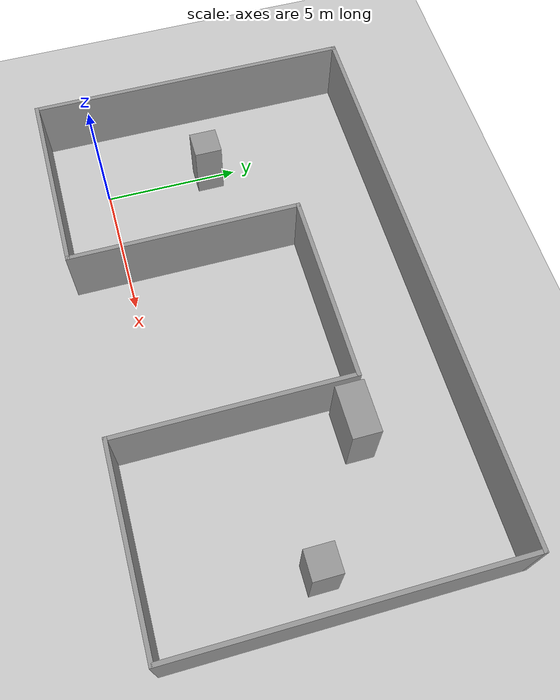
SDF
<sdf version="1.7">
 <world name="default">
  <light name="sun" type="directional">
   <pose>0 0 10 0 -0 0</pose>
   <diffuse>0.8 0.8 0.8 1</diffuse>
   <specular>0.2 0.2 0.2 1</specular>
   <attenuation>
    <range>1000</range>
    <constant>0.9</constant>
    <linear>0.01</linear>
    <quadratic>0.001</quadratic>
   </attenuation>
   <direction>-0.5 0.1 -0.9</direction>
   <spot><inner_angle>0</inner_angle><outer_angle>0</outer_angle><falloff>0</falloff></spot>
  </light>
  <model name="ground_plane">
   <static>1</static>
   <link name="link">
    <collision name="collision">
     <geometry><plane><normal>0 0 1</normal><size>100 100</size></plane></geometry>
     <surface>
      <contact><collide_bitmask>65535</collide_bitmask></contact>
      <friction><ode><mu>100</mu><mu2>50</mu2></ode></friction>
     </surface>
    </collision>
    <visual name="visual">
     <cast_shadows>0</cast_shadows>
     <geometry><plane><normal>0 0 1</normal><size>100 100</size></plane></geometry>
     <material>
      <script><uri>file://media/materials/scripts/gazebo.material</uri><name>Gazebo/Grey</name></script>
     </material>
    </visual>
   </link>
  </model>
  <gravity>0 0 -9.8</gravity>
  <magnetic_field>6e-06 2.3e-05 -4.2e-05</magnetic_field>
  <atmosphere type="adiabatic"/>
  <physics type="ode">
   <max_step_size>0.001</max_step_size>
   <real_time_factor>1</real_time_factor>
   <real_time_update_rate>1000</real_time_update_rate>
  </physics>
  <scene><ambient>0.4 0.4 0.4 1</ambient><background>0.7 0.7 0.7 1</background><shadows>1</shadows></scene>
  <audio><device>default</device></audio>
  <spherical_coordinates>
   <surface_model>EARTH_WGS84</surface_model>
   <latitude_deg>0</latitude_deg>
   <longitude_deg>0</longitude_deg>
   <elevation>0</elevation>
   <heading_deg>0</heading_deg>
  </spherical_coordinates>
  <model name="u_shape_test">
   <pose>7.27471 4.04698 0 0 -0 0</pose>
   <link name="Wall_12">
    <collision name="Wall_12_Collision">
     <geometry><box><size>8.5 0.15 2.5</size></box></geometry>
     <pose>0 0 1.25 0 -0 0</pose>
    </collision>
    <visual name="Wall_12_Visual">
     <pose>0 0 1.25 0 -0 0</pose>
     <geometry><box><size>8.5 0.15 2.5</size></box></geometry>
     <material>
      <script><uri>file://media/materials/scripts/gazebo.material</uri><name>Gazebo/Grey</name></script>
      <ambient>1 1 1 1</ambient>
     </material>
     <meta><layer>0</layer></meta>
    </visual>
    <pose>-3.425 -1.75 0 0 -0 1.5708</pose>
   </link>
   <link name="Wall_13">
    <collision name="Wall_13_Collision">
     <geometry><box><size>7 0.15 2.5</size></box></geometry>
     <pose>0 0 1.25 0 -0 0</pose>
    </collision>
    <visual name="Wall_13_Visual">
     <pose>0 0 1.25 0 -0 0</pose>
     <geometry><box><size>7 0.15 2.5</size></box></geometry>
     <material>
      <script><uri>file://media/materials/scripts/gazebo.material</uri><name>Gazebo/Grey</name></script>
      <ambient>1 1 1 1</ambient>
     </material>
     <meta><layer>0</layer></meta>
    </visual>
    <pose>0 2.425 0 0 -0 0</pose>
   </link>
   <link name="Wall_14">
    <collision name="Wall_14_Collision">
     <geometry><box><size>8.5 0.15 2.5</size></box></geometry>
     <pose>0 0 1.25 0 -0 0</pose>
    </collision>
    <visual name="Wall_14_Visual">
     <pose>0 0 1.25 0 -0 0</pose>
     <geometry><box><size>8.5 0.15 2.5</size></box></geometry>
     <material>
      <script><uri>file://media/materials/scripts/gazebo.material</uri><name>Gazebo/Grey</name></script>
      <ambient>1 1 1 1</ambient>
     </material>
     <meta><layer>0</layer></meta>
    </visual>
    <pose>3.425 -1.75 0 0 -0 -1.5708</pose>
   </link>
   <link name="Wall_15">
    <collision name="Wall_15_Collision">
     <geometry><box><size>7 0.15 2.5</size></box></geometry>
     <pose>0 0 1.25 0 -0 0</pose>
    </collision>
    <visual name="Wall_15_Visual">
     <pose>0 0 1.25 0 -0 0</pose>
     <geometry><box><size>7 0.15 2.5</size></box></geometry>
     <material>
      <script><uri>file://media/materials/scripts/gazebo.material</uri><name>Gazebo/Grey</name></script>
      <ambient>1 1 1 1</ambient>
     </material>
     <meta><layer>0</layer></meta>
    </visual>
    <pose>6.85 -5.925 0 0 -0 0</pose>
   </link>
   <link name="Wall_16">
    <collision name="Wall_16_Collision">
     <geometry><box><size>12 0.15 2.5</size></box></geometry>
     <pose>0 0 1.25 0 -0 0</pose>
    </collision>
    <visual name="Wall_16_Visual">
     <pose>0 0 1.25 0 -0 0</pose>
     <geometry><box><size>12 0.15 2.5</size></box></geometry>
     <material>
      <script><uri>file://media/materials/scripts/gazebo.material</uri><name>Gazebo/Grey</name></script>
      <ambient>1 1 1 1</ambient>
     </material>
     <meta><layer>0</layer></meta>
    </visual>
    <pose>10.275 -0 0 0 -0 1.5708</pose>
   </link>
   <link name="Wall_17">
    <collision name="Wall_17_Collision">
     <geometry><box><size>20.7 0.15 2.5</size></box></geometry>
     <pose>0 0 1.25 0 -0 0</pose>
    </collision>
    <visual name="Wall_17_Visual">
     <pose>0 0 1.25 0 -0 0</pose>
     <geometry><box><size>20.7 0.15 2.5</size></box></geometry>
     <material>
      <script><uri>file://media/materials/scripts/gazebo.material</uri><name>Gazebo/Grey</name></script>
      <ambient>1 1 1 1</ambient>
     </material>
     <meta><layer>0</layer></meta>
    </visual>
    <pose>0 5.925 0 0 -0 3.14159</pose>
   </link>
   <link name="Wall_8">
    <collision name="Wall_8_Collision">
     <geometry><box><size>12 0.15 2.5</size></box></geometry>
     <pose>0 0 1.25 0 -0 0</pose>
    </collision>
    <visual name="Wall_8_Visual">
     <pose>0 0 1.25 0 -0 0</pose>
     <geometry><box><size>12 0.15 2.5</size></box></geometry>
     <material>
      <script><uri>file://media/materials/scripts/gazebo.material</uri><name>Gazebo/Grey</name></script>
      <ambient>1 1 1 1</ambient>
     </material>
     <meta><layer>0</layer></meta>
    </visual>
    <pose>-10.275 -0 0 0 -0 -1.5708</pose>
   </link>
   <link name="Wall_9">
    <collision name="Wall_9_Collision">
     <geometry><box><size>7 0.15 2.5</size></box></geometry>
     <pose>0 0 1.25 0 -0 0</pose>
    </collision>
    <visual name="Wall_9_Visual">
     <pose>0 0 1.25 0 -0 0</pose>
     <geometry><box><size>7 0.15 2.5</size></box></geometry>
     <material>
      <script><uri>file://media/materials/scripts/gazebo.material</uri><name>Gazebo/Grey</name></script>
      <ambient>1 1 1 1</ambient>
     </material>
     <meta><layer>0</layer></meta>
    </visual>
    <pose>-6.85 -5.925 0 0 -0 0</pose>
   </link>
   <static>1</static>
  </model>
  <model name="unit_box">
   <pose>0.046763 3.9676 1.1298 -1e-06 1e-06 -0.001735</pose>
   <link name="link">
    <inertial>
     <mass>1</mass>
     <inertia>
      <ixx>0.166667</ixx>
      <ixy>0</ixy>
      <ixz>0</ixz>
      <iyy>0.166667</iyy>
      <iyz>0</iyz>
      <izz>0.166667</izz>
     </inertia>
    </inertial>
    <collision name="collision"><geometry><box><size>1 1 2.25961</size></box></geometry></collision>
    <visual name="visual">
     <geometry><box><size>1 1 2.25961</size></box></geometry>
     <material>
      <script><name>Gazebo/Grey</name><uri>file://media/materials/scripts/gazebo.material</uri></script>
     </material>
    </visual>
   </link>
  </model>
  <model name="unit_box_0">
   <pose>11.8383 6.08272 1.24147 0 -4e-06 1.8e-05</pose>
   <link name="link">
    <inertial>
     <mass>1</mass>
     <inertia>
      <ixx>0.166667</ixx>
      <ixy>0</ixy>
      <ixz>0</ixz>
      <iyy>0.166667</iyy>
      <iyz>0</iyz>
      <izz>0.166667</izz>
     </inertia>
    </inertial>
    <collision name="collision"><geometry><box><size>1.86143 1 2.48296</size></box></geometry></collision>
    <visual name="visual">
     <geometry><box><size>1.86143 1 2.48296</size></box></geometry>
     <material>
      <script><name>Gazebo/Grey</name><uri>file://media/materials/scripts/gazebo.material</uri></script>
     </material>
    </visual>
   </link>
  </model>
  <model name="unit_box_1">
   <pose>16.0802 3.60408 1.17818 1e-06 1e-06 5.3e-05</pose>
   <link name="link">
    <inertial>
     <mass>1</mass>
     <inertia>
      <ixx>0.166667</ixx>
      <ixy>0</ixy>
      <ixz>0</ixz>
      <iyy>0.166667</iyy>
      <iyz>0</iyz>
      <izz>0.166667</izz>
     </inertia>
    </inertial>
    <collision name="collision"><geometry><box><size>1 1 2.35635</size></box></geometry></collision>
    <visual name="visual">
     <geometry><box><size>1 1 2.35635</size></box></geometry>
     <material>
      <script><name>Gazebo/Grey</name><uri>file://media/materials/scripts/gazebo.material</uri></script>
     </material>
    </visual>
   </link>
  </model>
  <plugin name="gazebo_ros_state" filename="libgazebo_ros_state.so">
   <ros><namespace>/gazebo</namespace></ros>
   <update_rate>50</update_rate>
  </plugin>
 </world>
</sdf>
